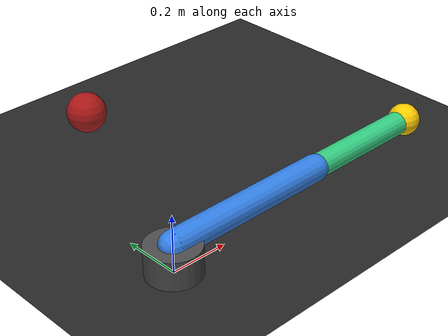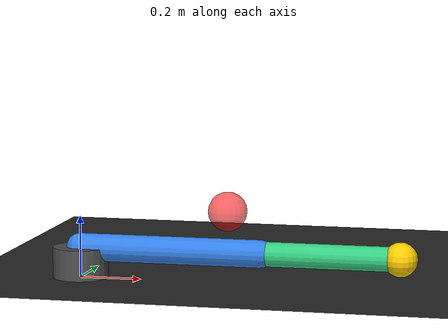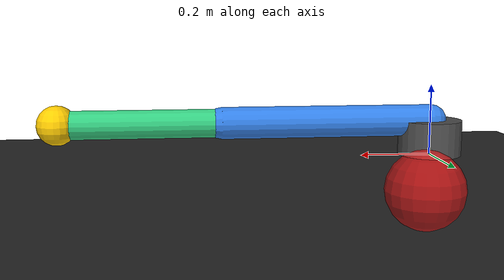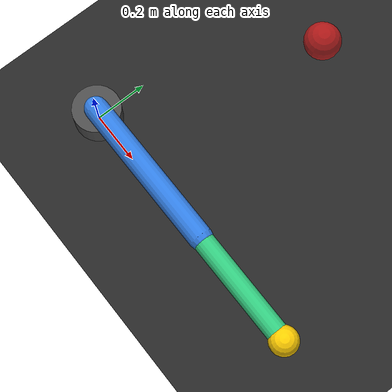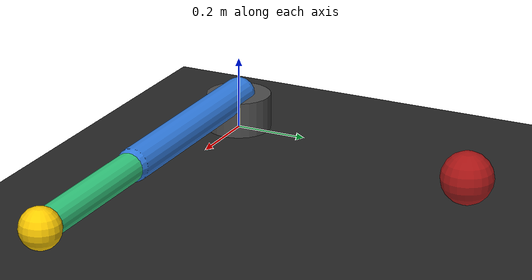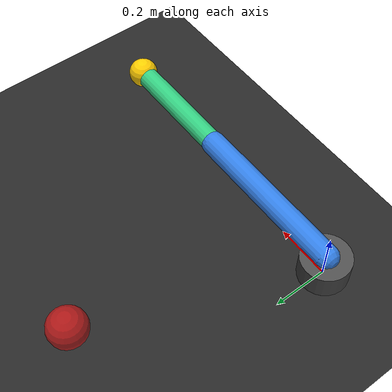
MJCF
<mujoco model="two_link_target_tracking">
  <option timestep="0.002" gravity="0 0 0"/>

  <visual>
    <global azimuth="90" elevation="-90" offwidth="1200" offheight="760"/>
  </visual>

  <worldbody>
    <light pos="0 0 3"/>
    <geom name="floor" type="plane" size="2 2 0.1" rgba="0.15 0.15 0.15 1"/>

    <body name="base" pos="0 0 0.05">
      <geom type="cylinder" size="0.09 0.05" rgba="0.3 0.3 0.3 1" contype="0" conaffinity="0"/>

      <body name="link1" pos="0 0 0.05">
        <joint name="shoulder" type="hinge" axis="0 0 1" range="-180 180" damping="1"/>
        <geom type="capsule" fromto="0 0 0 0.6 0 0" size="0.045" rgba="0.2 0.5 0.9 1" contype="0" conaffinity="0"/>

        <body name="link2" pos="0.6 0 0">
          <joint name="elbow" type="hinge" axis="0 0 1" range="-180 180" damping="1"/>
          <geom type="capsule" fromto="0 0 0 0.45 0 0" size="0.04" rgba="0.2 0.8 0.5 1" contype="0" conaffinity="0"/>
          <site name="end_effector" pos="0.45 0 0" size="0.055" rgba="1 0.8 0 1"/>
        </body>
      </body>
    </body>

    <site name="target" pos="0.30 0.80 0.1" size="0.07" rgba="1 0.1 0.1 0.65"/>

    <camera name="overview" pos="0.45 0.35 2.4" xyaxes="1 0 0 0 1 0"/>
  </worldbody>

  <actuator>
    <position name="shoulder_position" joint="shoulder" kp="80" kv="8" ctrlrange="-3.1416 3.1416"/>
    <position name="elbow_position" joint="elbow" kp="60" kv="6" ctrlrange="-3.1416 3.1416"/>
  </actuator>
</mujoco>
